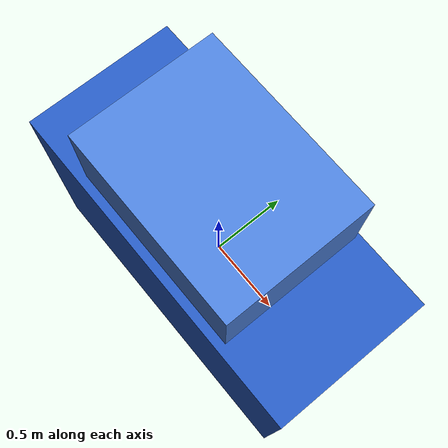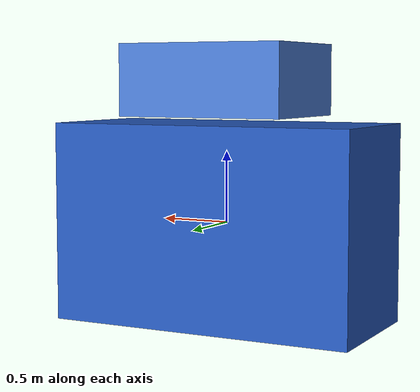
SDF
<?xml version="1.0"?>
<!-- 불법주차 차량 (정적 장애물) — 기획 핵심 시나리오. 팀 월드에 런타임 스폰 -->
<sdf version="1.10">
  <model name="illegal_car">
    <static>true</static>
    <link name="body">
      <collision name="collision">
        <geometry><box><size>2.2 1.0 1.4</size></box></geometry>
      </collision>
      <visual name="visual">
        <geometry><box><size>2.2 1.0 1.4</size></box></geometry>
        <material><ambient>0.15 0.35 0.75 1</ambient><diffuse>0.15 0.35 0.75 1</diffuse></material>
      </visual>
    </link>
    <!-- 창문 느낌 (시각용) -->
    <link name="cabin">
      <pose>0 0 1.0 0 0 0</pose>
      <visual name="v"><geometry><box><size>1.2 0.9 0.5</size></box></geometry>
        <material><ambient>0.3 0.5 0.85 1</ambient><diffuse>0.3 0.5 0.85 1</diffuse></material></visual>
    </link>
    <joint name="cabin_j" type="fixed"><parent>body</parent><child>cabin</child></joint>
  </model>
</sdf>
